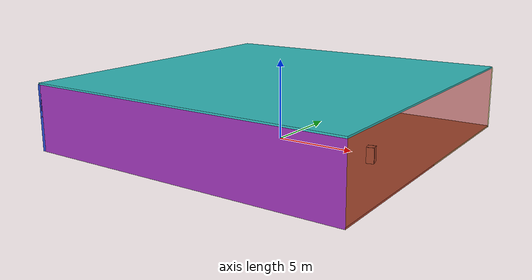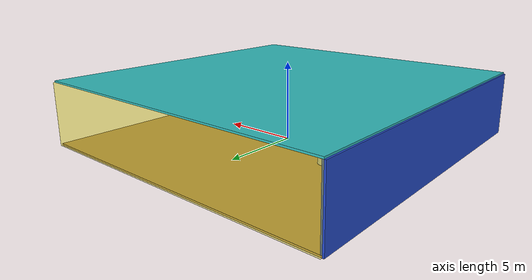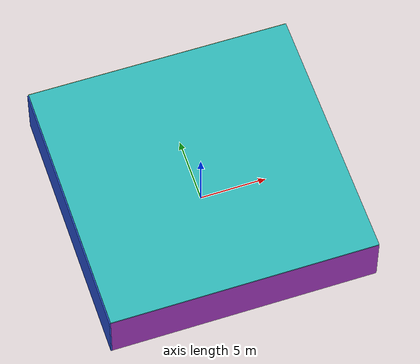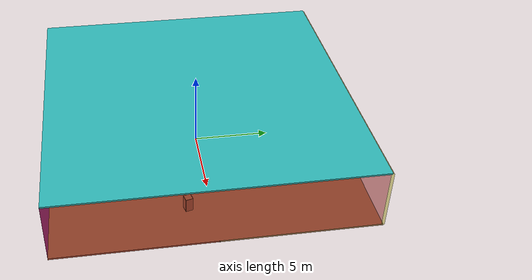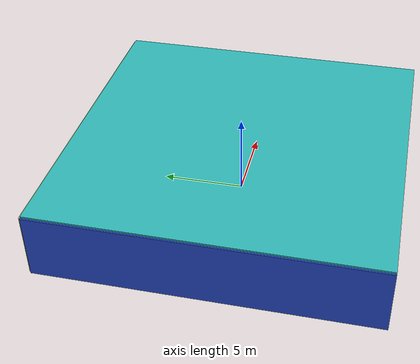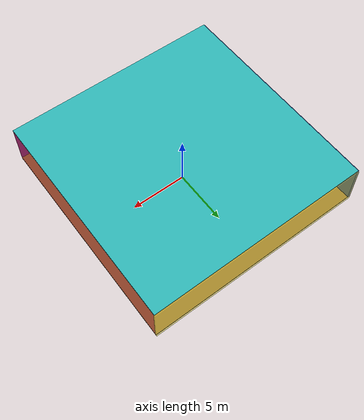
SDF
<sdf version="1.4">
 <world name="default">
  <physics type="ode">
   <max_step_size>0.001</max_step_size>
   <real_time_factor>1</real_time_factor>
   <real_time_update_rate>1000</real_time_update_rate>
   <gravity>0 0 -9.8</gravity>
  </physics>
  <scene><ambient>0.4 0.4 0.4 1</ambient><background>0.7 0.7 0.7 1</background><shadows>1</shadows></scene>
  <model name="Surrounding">
   <static>1</static>
   <link name="Ceiling">
    <collision name="Ceiling_Collision"><geometry><box><size>20 20 0.1</size></box></geometry></collision>
    <visual name="Ceiling_Visual">
     <geometry><box><size>20 20 0.1</size></box></geometry>
     <material>
      <script><uri>file://media/materials/scripts/gazebo.material</uri><name>Gazebo/Turquoise</name></script>
     </material>
    </visual>
    <pose>0 0 4.05 0 0 0</pose>
   </link>
   <link name="Wall_South">
    <collision name="Wall_South_Collision">
     <geometry><box><size>20 0 4</size></box></geometry>
     <pose>0 0 2 0 -0 0</pose>
    </collision>
    <visual name="Wall_South_Visual">
     <pose>0 0 2 0 -0 0</pose>
     <geometry><box><size>20 0 4</size></box></geometry>
     <material>
      <script><uri>file://media/materials/scripts/gazebo.material</uri><name>Gazebo/PurpleGlow</name></script>
     </material>
    </visual>
    <velocity_decay><linear>0</linear><angular>0</angular></velocity_decay>
    <pose>0 -10 0 0 -0 0</pose>
   </link>
   <link name="Wall_East">
    <collision name="Wall_21_Collision">
     <geometry><box><size>20 0 4</size></box></geometry>
     <pose>0 0 2 0 -0 0</pose>
    </collision>
    <visual name="Wall_21_Visual">
     <pose>0 0 2 0 -0 0</pose>
     <geometry><box><size>20 0 4</size></box></geometry>
     <material>
      <script><uri>file://media/materials/scripts/gazebo.material</uri><name>Gazebo/RedTransparent</name></script>
     </material>
    </visual>
    <velocity_decay><linear>0</linear><angular>0</angular></velocity_decay>
    <pose>10 0 0 0 -0 1.5708</pose>
   </link>
   <link name="Wall_North">
    <collision name="Wall_22_Collision">
     <geometry><box><size>20 0.2 4</size></box></geometry>
     <pose>0 0 2 0 -0 0</pose>
    </collision>
    <visual name="Wall_22_Visual">
     <pose>0 0 2 0 -0 0</pose>
     <geometry><box><size>20 0.2 4</size></box></geometry>
     <material>
      <script>
       <uri>file://media/materials/scripts/gazebo.material</uri>
       <name>Gazebo/YellowTransparent</name>
      </script>
     </material>
    </visual>
    <velocity_decay><linear>0</linear><angular>0</angular></velocity_decay>
    <pose>0 10 0 0 -0 0</pose>
   </link>
   <link name="Wall_West">
    <collision name="Wall_23_Collision">
     <geometry><box><size>20 0.2 4</size></box></geometry>
     <pose>0 0 2 0 -0 0</pose>
    </collision>
    <visual name="Wall_23_Visual">
     <pose>0 0 2 0 -0 0</pose>
     <geometry><box><size>20 0.2 4</size></box></geometry>
     <material>
      <script><uri>file://media/materials/scripts/gazebo.material</uri><name>Gazebo/BlueLaser</name></script>
     </material>
    </visual>
    <velocity_decay><linear>0</linear><angular>0</angular></velocity_decay>
    <pose>-10 0 0 0 0 -1.5708</pose>
   </link>
   <link name="Ground_link">
    <collision name="collision">
     <pose>0 0 .05 0 -0 0</pose>
     <geometry><box><size>20 20 0.1</size></box></geometry>
    </collision>
    <visual name="visual">
     <pose>0 0 .05 0 -0 0</pose>
     <geometry><box><size>20 20 0.1</size></box></geometry>
     <material>
      <script><uri>file://media/materials/scripts/gazebo.material</uri><name>Gazebo/WoodFloor</name></script>
     </material>
    </visual>
   </link>
   <static>1</static>
  </model>
  <spherical_coordinates>
   <surface_model>EARTH_WGS84</surface_model>
   <latitude_deg>0</latitude_deg>
   <longitude_deg>0</longitude_deg>
   <elevation>0</elevation>
   <heading_deg>0</heading_deg>
  </spherical_coordinates>
  <light name="lightball_0" type="diffuse">
   <diffuse>0.8 0.8 0.8 1</diffuse>
   <specular>0.2 0.2 0.2 1</specular>
   <attenuation>
    <range>100</range>
    <constant>0.7</constant>
    <linear>0.01</linear>
    <quadratic>0.001</quadratic>
   </attenuation>
   <direction>-0.5 0.1 -0.9</direction>
   <pose>-9.6719377076 -1.41643142103 1.37895686542 0 0 0</pose>
  </light>
  <light name="lightball_1" type="diffuse">
   <diffuse>0.8 0.8 0.8 1</diffuse>
   <specular>0.2 0.2 0.2 1</specular>
   <attenuation>
    <range>100</range>
    <constant>0.7</constant>
    <linear>0.01</linear>
    <quadratic>0.001</quadratic>
   </attenuation>
   <direction>-0.5 0.1 -0.9</direction>
   <pose>-1.86997400927 6.27694816281 2.02828111613 0 0 0</pose>
  </light>
  <light name="lightball_2" type="diffuse">
   <diffuse>0.8 0.8 0.8 1</diffuse>
   <specular>0.2 0.2 0.2 1</specular>
   <attenuation>
    <range>100</range>
    <constant>0.7</constant>
    <linear>0.01</linear>
    <quadratic>0.001</quadratic>
   </attenuation>
   <direction>-0.5 0.1 -0.9</direction>
   <pose>-8.76151968057 1.71281917862 1.03597442695 0 0 0</pose>
  </light>
  <light name="lightball_3" type="diffuse">
   <diffuse>0.8 0.8 0.8 1</diffuse>
   <specular>0.2 0.2 0.2 1</specular>
   <attenuation>
    <range>100</range>
    <constant>0.7</constant>
    <linear>0.01</linear>
    <quadratic>0.001</quadratic>
   </attenuation>
   <direction>-0.5 0.1 -0.9</direction>
   <pose>-0.459824134249 -1.76183359047 2.53327563928 0 0 0</pose>
  </light>
  <include>
   <uri>model://textured_shapes</uri>
   <pose>-3.38413623014 1.26991061551 0 0 0 0.934987842269</pose>
  </include>
  <include><uri>model://cabinet</uri><pose>-1.71488645019 -3.95213364788 0 0 0 2.91570269467</pose></include>
  <include><uri>model://cabinet</uri><pose>6.97984277166 -1.47448897331 0 0 0 0.247713962321</pose></include>
 </world>
</sdf>

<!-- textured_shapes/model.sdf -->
<sdf version="1.6">
  <model name="textured_shapes">
    <pose>0 0 0.5 0 0 0</pose>
    <link name="box">
      <pose>0 -1.5 0 0 0 0</pose>
      <collision name="collision">
        <geometry>
          <box>
            <size>1 1 1</size>
          </box>
        </geometry>
      </collision>
      <visual name="visual">
        <geometry>
          <box>
            <size>1 1 1</size>
          </box>
        </geometry>
        <material>
          <script>
            <uri>model://../model_source/models/textured_shapes/materials/scripts</uri>
            <uri>model://../model_source/models/textured_shapes/materials/textures</uri>
            <name>TexturedShape/Squares</name>
          </script>
        </material>
      </visual>
    </link>
    <link name="sphere">
      <collision name="collision">
        <geometry>
          <sphere>
            <radius>0.5</radius>
          </sphere>
        </geometry>
      </collision>
      <visual name="visual">
        <geometry>
          <sphere>
            <radius>0.5</radius>
          </sphere>
        </geometry>
        <material>
          <script>
            <uri>model://../model_source/models/textured_shapes/materials/scripts</uri>
            <uri>model://../model_source/models/textured_shapes/materials/textures</uri>
            <name>TexturedShape/Squares</name>
          </script>
        </material>
      </visual>
    </link>
    <link name="cylinder">
      <pose>0 1.5 0 0 0 0</pose>
      <collision name="collision">
        <geometry>
          <cylinder>
            <radius>0.5</radius>
            <length>1</length>
          </cylinder>
        </geometry>
      </collision>
      <visual name="visual">
        <geometry>
          <cylinder>
            <radius>0.5</radius>
            <length>1</length>
          </cylinder>
        </geometry>
        <material>
          <script>
            <uri>model://../model_source/models/textured_shapes/materials/scripts</uri>
            <uri>model://../model_source/models/textured_shapes/materials/textures</uri>
            <name>TexturedShape/Squares</name>
          </script>
        </material>
      </visual>
    </link>
  </model>
</sdf>

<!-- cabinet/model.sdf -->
<sdf version="1.5">
  <model name="cabinet">
    <static>true</static>
    <link name="cabinet_bottom_plate">
      <inertial>
        <pose>0 0 -1 0 0 0</pose>
        <inertia>
          <ixx>2.050000</ixx>
          <ixy>0</ixy>
          <ixz>0</ixz>
          <iyy>2.050000</iyy>
          <iyz>0</iyz>
          <izz>2.050000</izz>
        </inertia>
        <mass>25.000000</mass>
      </inertial>
      <collision name="cabinet_bottom_plate_geom">
        <pose>0 0 0.010000 0 0 0</pose>
        <geometry>
          <box>
            <size>0.450000 0.450000 0.020000</size>
          </box>
        </geometry>
      </collision>
      <visual name="cabinet_bottom_plate_geom_visual">
        <pose>0 0 0.010000 0 0 0</pose>
        <geometry>
          <box>
            <size>0.450000 0.450000 0.020000</size>
          </box>
        </geometry>
        <material>
          <script>
            <uri>model://media/materials/scripts/gazebo.material</uri>
            <name>Gazebo/Wood</name>
          </script>
        </material>
      </visual>
      <collision name="cabinet_bottom_plate_geom_cabinet_back_plate">
        <pose>0.235000 0 0.510000 0 0 0</pose>
        <geometry>
          <box>
            <size>0.020000 0.450000 1.020000</size>
          </box>
        </geometry>
      </collision>
      <visual name="cabinet_bottom_plate_geom_cabinet_back_plate_visual">
        <pose>0.235000 0 0.510000 0 0 0</pose>
        <geometry>
          <box>
            <size>0.020000 0.450000 1.020000</size>
          </box>
        </geometry>
        <material>
          <script>
            <uri>model://media/materials/scripts/gazebo.material</uri>
            <name>Gazebo/Wood</name>
          </script>
        </material>
      </visual>
      <collision name="cabinet_bottom_plate_geom_cabinet_left_plate">
        <pose>0 0.235000 0.510000 0 0 0</pose>
        <geometry>
          <box>
            <size>0.450000 0.020000 1.020000</size>
          </box>
        </geometry>
      </collision>
      <visual name="cabinet_bottom_plate_geom_cabinet_left_plate_visual">
        <pose>0 0.235000 0.510000 0 0 0</pose>
        <geometry>
          <box>
            <size>0.450000 0.020000 1.020000</size>
          </box>
        </geometry>
        <material>
          <script>
            <uri>model://media/materials/scripts/gazebo.material</uri>
            <name>Gazebo/Wood</name>
          </script>
        </material>
      </visual>
      <collision name="cabinet_bottom_plate_geom_cabinet_middle_plate">
        <pose>0 0 0.510000 0 0 0</pose>
        <geometry>
          <box>
            <size>0.450000 0.450000 0.020000</size>
          </box>
        </geometry>
      </collision>
      <visual name="cabinet_bottom_plate_geom_cabinet_middle_plate_visual">
        <pose>0 0 0.510000 0 0 0</pose>
        <geometry>
          <box>
            <size>0.450000 0.450000 0.020000</size>
          </box>
        </geometry>
        <material>
          <script>
            <uri>model://media/materials/scripts/gazebo.material</uri>
            <name>Gazebo/Wood</name>
          </script>
        </material>
      </visual>
      <collision name="cabinet_bottom_plate_geom_cabinet_right_plate">
        <pose>0 -0.235000 0.510000 0 0 0</pose>
        <geometry>
          <box>
            <size>0.450000 0.020000 1.020000</size>
          </box>
        </geometry>
      </collision>
      <visual name="cabinet_bottom_plate_geom_cabinet_right_plate_visual">
        <pose>0 -0.235000 0.510000 0 0 0</pose>
        <geometry>
          <box>
            <size>0.450000 0.020000 1.020000</size>
          </box>
        </geometry>
        <material>
          <script>
            <uri>model://media/materials/scripts/gazebo.material</uri>
            <name>Gazebo/Wood</name>
          </script>
        </material>
      </visual>
      <collision name="cabinet_bottom_plate_geom_cabinet_top_plate">
        <pose>0 0 1.010000 0 0 0</pose>
        <geometry>
          <box>
            <size>0.450000 0.450000 0.020000</size>
          </box>
        </geometry>
      </collision>
      <visual name="cabinet_bottom_plate_geom_cabinet_top_plate_visual">
        <pose>0 0 1.010000 0 0 0</pose>
        <geometry>
          <box>
            <size>0.450000 0.450000 0.020000</size>
          </box>
        </geometry>
        <material>
          <script>
            <uri>model://media/materials/scripts/gazebo.material</uri>
            <name>Gazebo/Wood</name>
          </script>
        </material>
      </visual>
    </link>
  </model>
</sdf>
